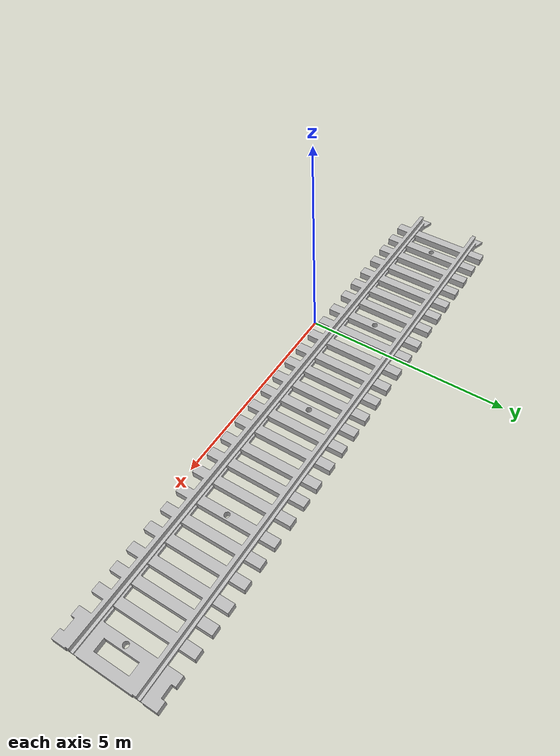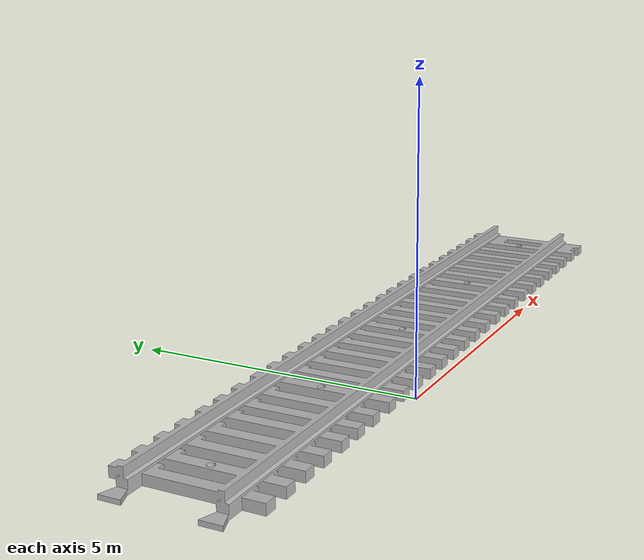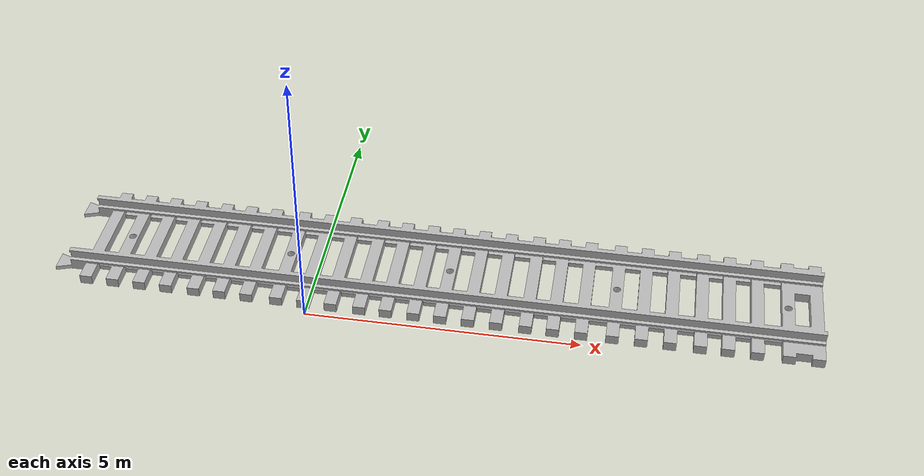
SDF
<?xml version="1.0" ?>
<sdf version="1.5">
  <model name="tracks_str">
        <static>true</static>
    <link name="link">
    <gravity>0</gravity>
      <collision name="collision">
        <geometry>
          <mesh>
            <scale>1 1 1</scale>
            <uri>model://tracks_str/meshes/tracks_straight.dae</uri>
          </mesh>
        </geometry>
      </collision>
      <visual name="visual">
        <geometry>
          <mesh>
            <scale>1 1 1</scale>
            <uri>model://tracks_str/meshes/tracks_straight.dae</uri>
          </mesh>
        </geometry>
      </visual>
    </link>
  </model>
</sdf>
